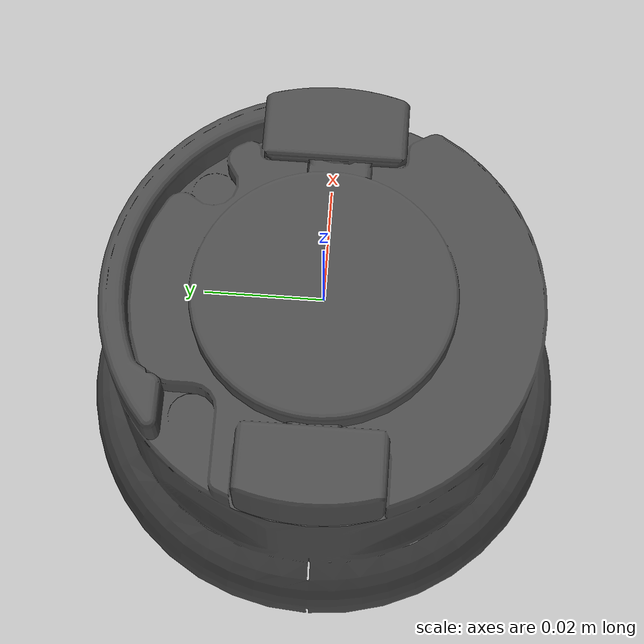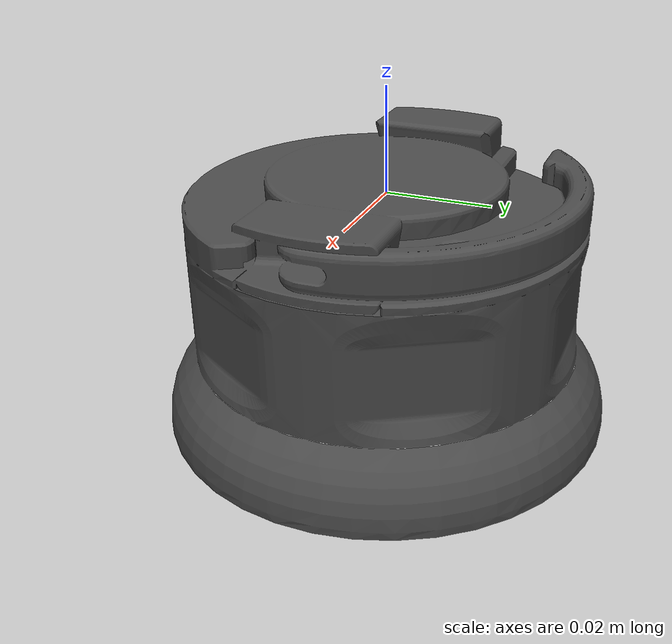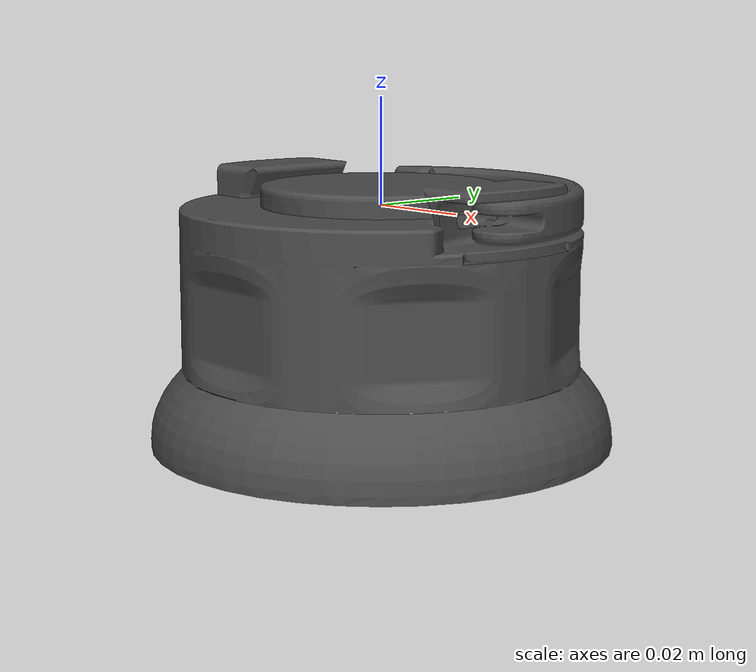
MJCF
<mujoco model="arm_5_link">
  <default>
    <default class="visual">
      <geom group="2" type="mesh" contype="0" conaffinity="0"/>
    </default>
    <default class="collision">
      <geom group="3" type="mesh"/>
    </default>
  </default>
  <asset>
    <material name="mtl_arm_5_link" specular="0.20000000000000004" shininess="1.0" rgba="0.29803922 0.29803922 0.29803922 1.0"/>
    <mesh file="arm_5_link.obj"/>
  </asset>
  <worldbody>
    <body name="arm_5_link">
      <geom material="mtl_arm_5_link" mesh="arm_5_link" class="visual"/>
      <geom mesh="arm_5_link" class="collision"/>
    </body>
  </worldbody>
</mujoco>
